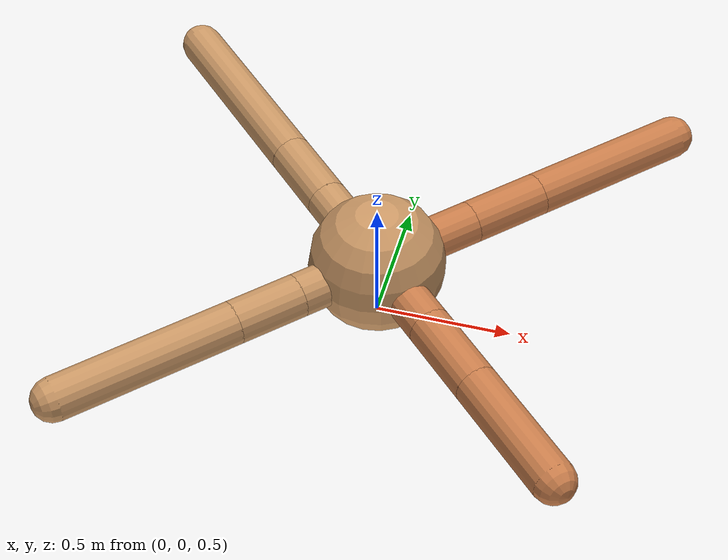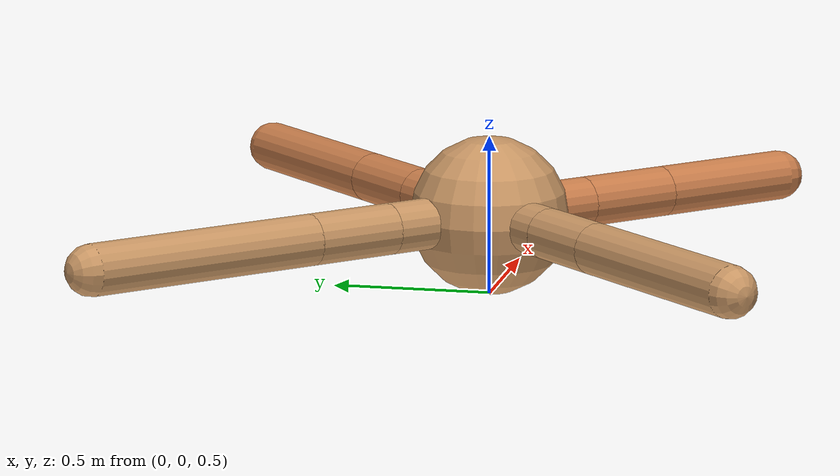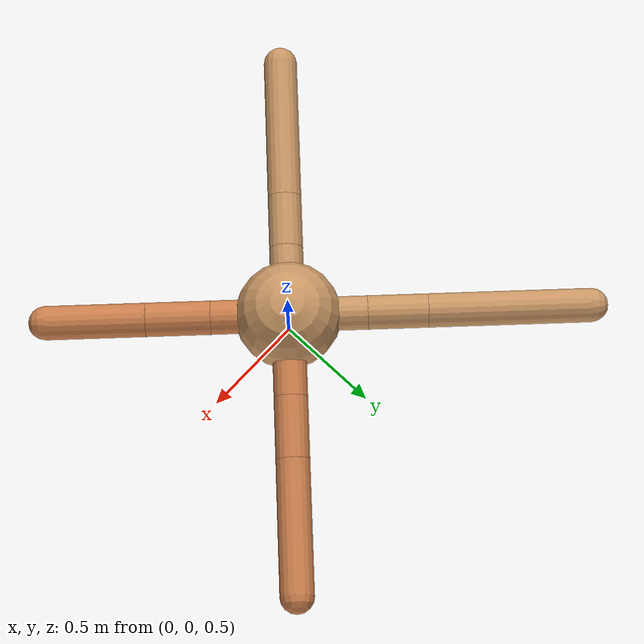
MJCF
<mujoco model="ant">
  <compiler angle="degree" coordinate="local" inertiafromgeom="true" />
  <option integrator="RK4" timestep="0.01" />
  <custom>
    <numeric data="0.0 0.0 0.55 1.0 0.0 0.0 0.0 0.0 1.0 0.0 -1.0 0.0 -1.0 0.0 1.0" name="init_qpos" />
  </custom>
  <default>
    <joint armature="1" damping="1" limited="true" />
    <geom conaffinity="0" condim="3" density="5.0" friction="1.5 0.1 0.1" margin="0.01" rgba="0.8 0.6 0.4 1" />
  </default>
  <worldbody>
    <body name="torso" pos="0 0 0.75">
      <geom name="torso_geom" pos="0 0 0" size="0.25" type="sphere" />

      <body name="front_left_leg" pos="0 0 0">
        <geom fromto="0.0 0.0 0.0 0.2798242775774012 0.2798242775774012 0.0" name="aux_1_geom" size="0.08" type="capsule" rgba=".8 .5 .3 1" />
        <body name="aux_1" pos="0.2798242775774012 0.2798242775774012 0.0">
          <joint axis="0 0 1" name="hip_1" pos="0.0 0.0 0.0" range="-40 40" type="hinge" />
          <geom fromto="0.0 0.0 0.0 0.2064695518920789 0.2064695518920789 0.0" name="left_leg_geom" size="0.08" type="capsule" rgba=".8 .5 .3 1" />
          <body pos="0.2064695518920789 0.2064695518920789 0.0" name="front_left_foot">
            <joint axis="-1 1 0" name="ankle_1" pos="0.0 0.0 0.0" range="30 100" type="hinge" />
            <geom fromto="0.0 0.0 0.0 0.4425397126828511 0.4425397126828511 0.0" name="left_ankle_geom" size="0.08" type="capsule" rgba=".8 .5 .3 1" />
          </body>
        </body>
      </body>
      <body name="front_right_leg" pos="0 0 0">
        <geom fromto="0.0 0.0 0.0 -0.2615009476514594 0.2615009476514594 0.0" name="aux_2_geom" size="0.08" type="capsule" />
        <body name="aux_2" pos="-0.2615009476514594 0.2615009476514594 0.0">
          <joint axis="0 0 1" name="hip_2" pos="0.0 0.0 0.0" range="-40 40" type="hinge" />
          <geom fromto="0.0 0.0 0.0 -0.1996033725754205 0.1996033725754205 0.0" name="right_leg_geom" size="0.08" type="capsule" />
          <body pos="-0.1996033725754205 0.1996033725754205 0.0" name="front_right_foot">
            <joint axis="1 1 0" name="ankle_2" pos="0.0 0.0 0.0" range="-100 -30" type="hinge" />
            <geom fromto="0.0 0.0 0.0 -0.5395596252082657 0.5395596252082657 0.0" name="right_ankle_geom" size="0.08" type="capsule" />
          </body>
        </body>
      </body>
      <body name="left_back_leg" pos="0 0 0">
        <geom fromto="0.0 0.0 0.0 -0.2305823718179418 -0.2305823718179418 0.0" name="aux_3_geom" size="0.08" type="capsule" />
        <body name="aux_3" pos="-0.2305823718179418 -0.2305823718179418 0.0">
          <joint axis="0 0 1" name="hip_3" pos="0.0 0.0 0.0" range="-40 40" type="hinge" />
          <geom fromto="0.0 0.0 0.0 -0.17958366957100075 -0.17958366957100075 0.0" name="back_leg_geom" size="0.08" type="capsule" />
          <body pos="-0.17958366957100075 -0.17958366957100075 0.0" name="left_back_foot">
            <joint axis="-1 1 0" name="ankle_3" pos="0.0 0.0 0.0" range="-100 -30" type="hinge" />
            <geom fromto="0.0 0.0 0.0 -0.4811941915618834 -0.4811941915618834 0.0" name="third_ankle_geom" size="0.08" type="capsule" />
          </body>
        </body>
      </body>
      <body name="right_back_leg" pos="0 0 0">
        <geom fromto="0.0 0.0 0.0 0.25547254913582845 -0.25547254913582845 0.0" name="aux_4_geom" size="0.08" type="capsule" rgba=".8 .5 .3 1" />
        <body name="aux_4" pos="0.25547254913582845 -0.25547254913582845 0.0">
          <joint axis="0 0 1" name="hip_4" pos="0.0 0.0 0.0" range="-40 40" type="hinge" />
          <geom fromto="0.0 0.0 0.0 0.21429064160906908 -0.21429064160906908 0.0" name="rightback_leg_geom" size="0.08" type="capsule" rgba=".8 .5 .3 1" />
          <body pos="0.21429064160906908 -0.21429064160906908 0.0" name="right_back_foot">
            <joint axis="1 1 0" name="ankle_4" pos="0.0 0.0 0.0" range="30 100" type="hinge" />
            <geom fromto="0.0 0.0 0.0 0.33044881437334106 -0.33044881437334106 0.0" name="fourth_ankle_geom" size="0.08" type="capsule" rgba=".8 .5 .3 1" />
          </body>
        </body>
      </body>
    </body>
  </worldbody>
  <actuator>
    <motor ctrllimited="true" ctrlrange="-1.0 1.0" joint="hip_4" gear="150" />
    <motor ctrllimited="true" ctrlrange="-1.0 1.0" joint="ankle_4" gear="150" />
    <motor ctrllimited="true" ctrlrange="-1.0 1.0" joint="hip_1" gear="150" />
    <motor ctrllimited="true" ctrlrange="-1.0 1.0" joint="ankle_1" gear="150" />
    <motor ctrllimited="true" ctrlrange="-1.0 1.0" joint="hip_2" gear="150" />
    <motor ctrllimited="true" ctrlrange="-1.0 1.0" joint="ankle_2" gear="150" />
    <motor ctrllimited="true" ctrlrange="-1.0 1.0" joint="hip_3" gear="150" />
    <motor ctrllimited="true" ctrlrange="-1.0 1.0" joint="ankle_3" gear="150" />
  </actuator>
</mujoco>
